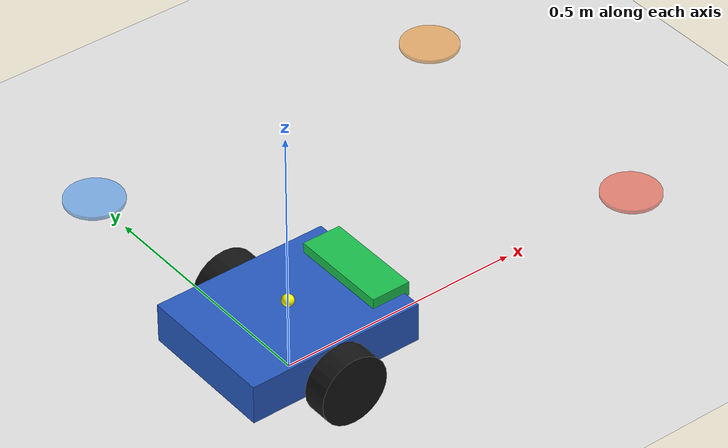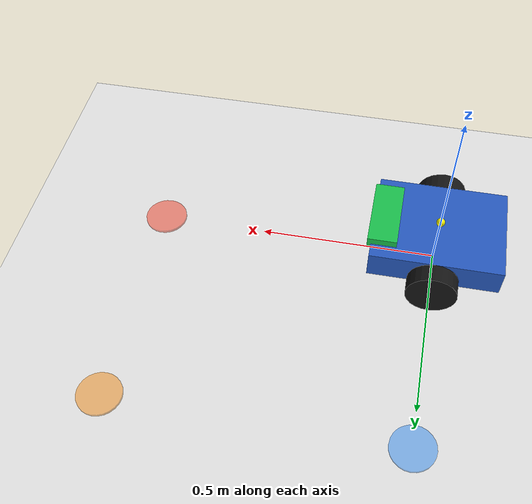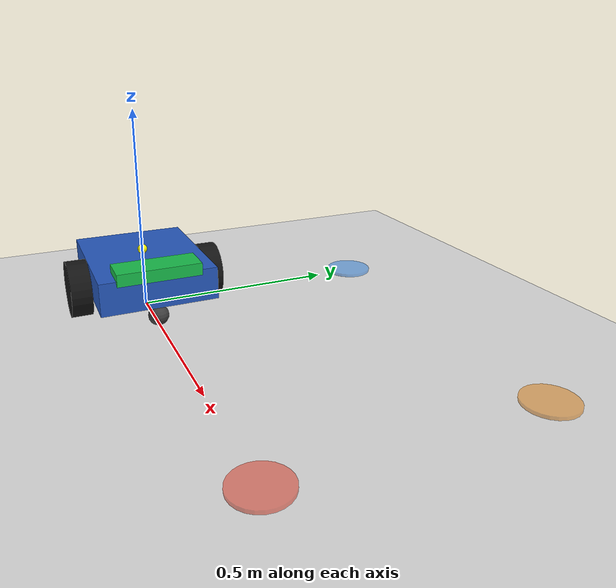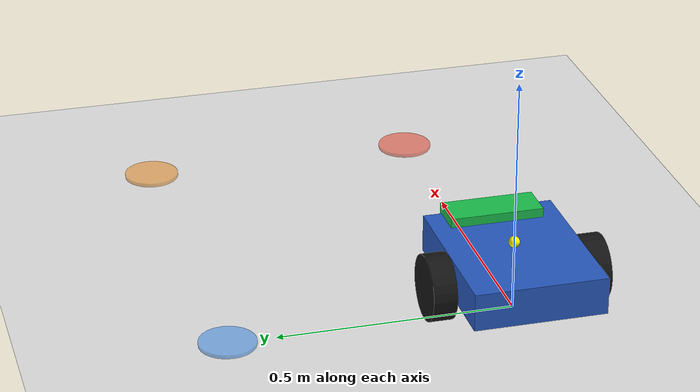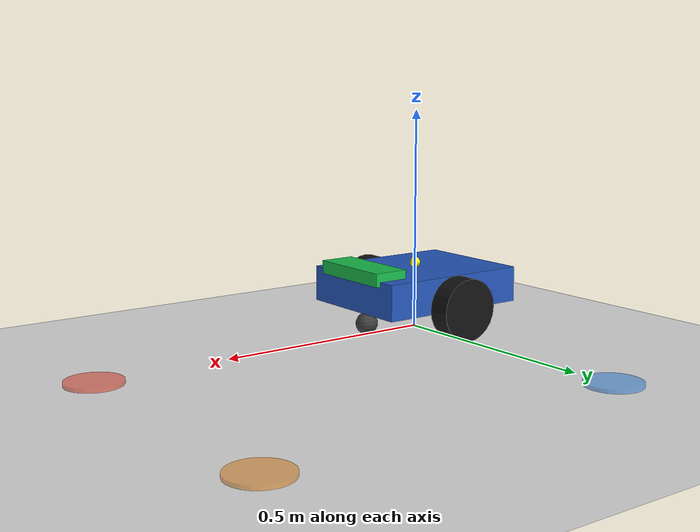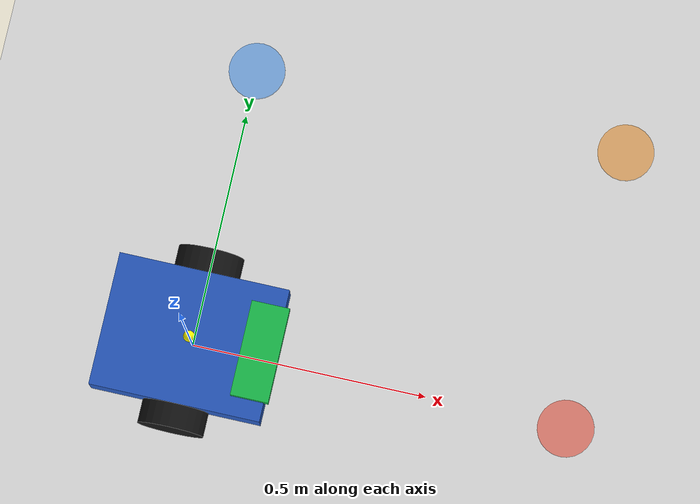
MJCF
<mujoco model="differential_drive_mobile_robot">
  <compiler angle="degree"/>
  <option timestep="0.002" integrator="implicitfast" cone="elliptic" impratio="10"
          gravity="0 0 -9.81"/>

  <visual>
    <headlight ambient="0.35 0.35 0.35" diffuse="0.7 0.7 0.7"/>
    <global azimuth="135" elevation="-35"/>
  </visual>

  <asset>
    <texture name="ground_texture" type="2d" builtin="checker"
             rgb1="0.82 0.82 0.82" rgb2="0.95 0.95 0.95" width="256" height="256"/>
    <material name="ground_material" texture="ground_texture" texrepeat="8 8" reflectance="0.05"/>
  </asset>

  <worldbody>
    <light name="sun" directional="true" pos="0 0 4" dir="0 0 -1"/>
    <geom name="ground" type="plane" size="3 3 0.1" material="ground_material"
          friction="1.0 0.01 0.001" condim="4"/>
    <camera name="overview" pos="1.8 -2.4 2.2" target="base" mode="targetbody" fovy="50"/>

    <site name="waypoint_1" type="cylinder" pos="0.8 0 0.004" size="0.06 0.004"
          rgba="0.95 0.25 0.15 0.55"/>
    <site name="waypoint_2" type="cylinder" pos="0.8 0.6 0.004" size="0.06 0.004"
          rgba="0.95 0.55 0.10 0.55"/>
    <site name="waypoint_3" type="cylinder" pos="0 0.6 0.004" size="0.06 0.004"
          rgba="0.20 0.55 0.95 0.55"/>

    <body name="base" pos="0 0 0.10">
      <freejoint name="base_free"/>
      <geom name="chassis" type="box" size="0.18 0.14 0.04" mass="2.0"
            rgba="0.15 0.35 0.75 1"/>
      <geom name="front" type="box" pos="0.15 0 0.045" size="0.04 0.10 0.015"
            mass="0.10" rgba="0.10 0.75 0.30 1" contype="0" conaffinity="0"/>
      <site name="imu" pos="0 0 0.05" size="0.012" rgba="1 1 0 1"/>

      <body name="left_wheel" pos="0 0.165 -0.03">
        <joint name="left_wheel_hinge" type="hinge" axis="0 1 0"
               damping="0.02" armature="0.001"/>
        <geom name="left_wheel_geom" type="cylinder" size="0.07 0.025"
              euler="90 0 0" mass="0.15" rgba="0.08 0.08 0.08 1"
              friction="1.2 0.02 0.001" condim="3" priority="1"/>
      </body>

      <body name="right_wheel" pos="0 -0.165 -0.03">
        <joint name="right_wheel_hinge" type="hinge" axis="0 1 0"
               damping="0.02" armature="0.001"/>
        <geom name="right_wheel_geom" type="cylinder" size="0.07 0.025"
              euler="90 0 0" mass="0.15" rgba="0.08 0.08 0.08 1"
              friction="1.2 0.02 0.001" condim="3" priority="1"/>
      </body>

      <geom name="front_caster" type="sphere" pos="0.14 0 -0.075" size="0.025"
            mass="0.05" rgba="0.25 0.25 0.25 1"
            friction="0.05 0.005 0.0001" condim="3" priority="1"/>
    </body>
  </worldbody>

  <actuator>
    <velocity name="left_wheel_velocity" joint="left_wheel_hinge" kv="0.4"
              ctrlrange="-12 12" forcerange="-1.5 1.5"/>
    <velocity name="right_wheel_velocity" joint="right_wheel_hinge" kv="0.4"
              ctrlrange="-12 12" forcerange="-1.5 1.5"/>
  </actuator>

  <sensor>
    <jointvel name="left_wheel_speed" joint="left_wheel_hinge"/>
    <jointvel name="right_wheel_speed" joint="right_wheel_hinge"/>
    <framepos name="base_position" objtype="xbody" objname="base"/>
    <framequat name="base_orientation" objtype="xbody" objname="base"/>
    <gyro name="base_gyro" site="imu"/>
  </sensor>

  <keyframe>
    <key name="home" qpos="0 0 0.10 1 0 0 0 0 0" ctrl="0 0"/>
  </keyframe>
</mujoco>
